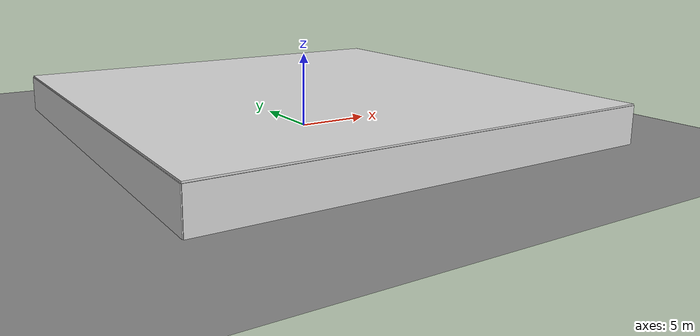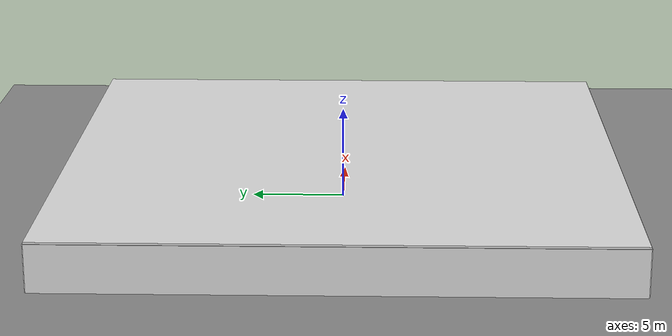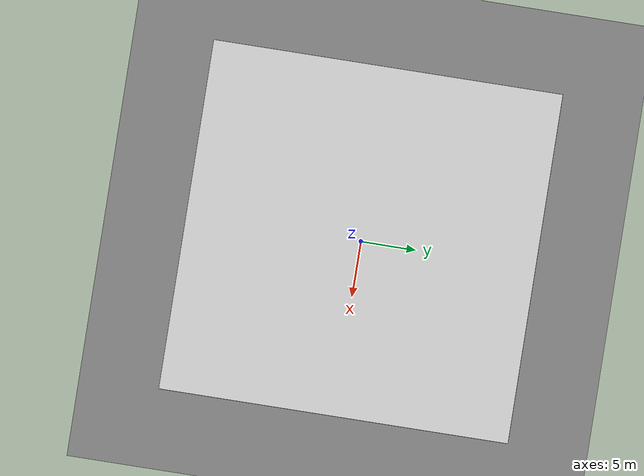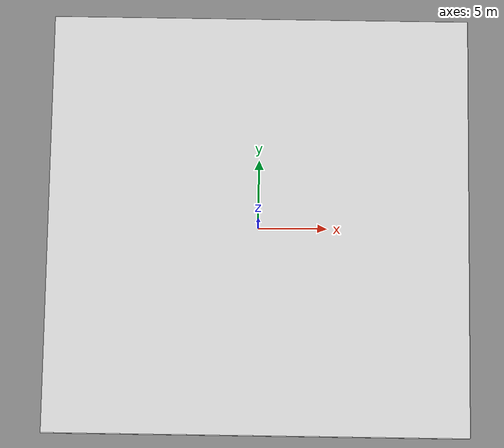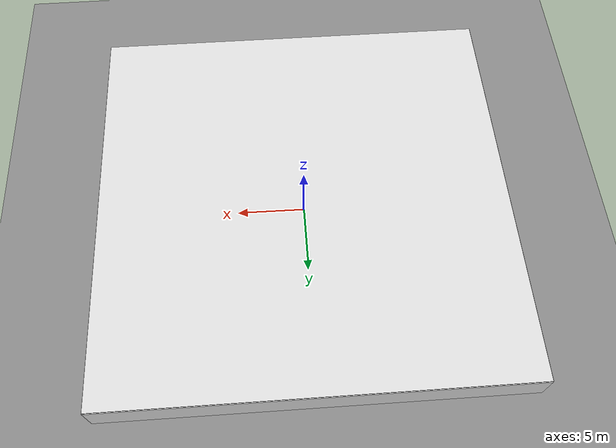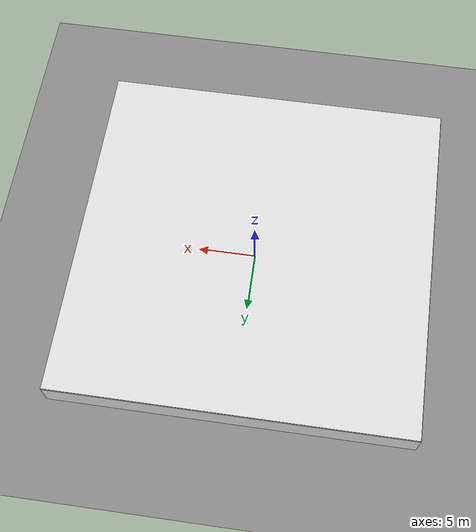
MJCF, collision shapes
<?xml version='1.0' encoding='utf-8'?>
<mujoco model="go2">

  <include file="./scenarios/FT7_B_08/scene_room.xml" />
  <include file="../common/mimic_sites.xml" />

  <statistic center="0 0 0.5" extent="10"/>

  <visual>
    <rgba haze="0 0 0 0" />
    <map znear="0.001" zfar="300" />
  </visual>

  <compiler angle="radian" meshdir="assets" autolimits="true" />

  <option cone="elliptic" impratio="100" />

  <default>
    <default class="go2">
      <geom friction="0.6" margin="0.001" condim="1" />
      <joint axis="0 1 0" damping="2" armature="0.01" frictionloss="0.2" />
      <motor ctrlrange="-23.7 23.7" />
      <default class="abduction">
        <joint axis="1 0 0" range="-1.0472 1.0472" />
      </default>
      <default class="hip">
        <default class="front_hip">
          <joint range="-1.5708 3.4907" />
        </default>
        <default class="back_hip">
          <joint range="-0.5236 4.5379" />
        </default>
      </default>
      <default class="knee">
        <joint range="-2.7227 -0.83776" />
        <motor ctrlrange="-45.43 45.43" />
      </default>
      <default class="visual">
        <geom type="mesh" contype="0" conaffinity="0" group="0" />
      </default>
      <default class="collision">
        <geom group="3" />
        <default class="foot">
          <geom size="0.022" pos="-0.002 0 -0.213" priority="1" solimp="0.015 1 0.022" condim="6" friction="0.8 0.02 0.01" />
        </default>
      </default>
    </default>
  </default>

  <asset>
    <material name="metal" rgba=".9 .95 .95 1" />
    <material name="black" rgba="0 0 0 1" />
    <material name="white" rgba="1 1 1 1" />
    <material name="gray" rgba="0.671705 0.692426 0.774270 1" />
    <material name="mat_red_emissive" rgba="1 0 0 1" emission="1" specular="0" shininess="0" />

    <mesh file="base_0.obj" />
    <mesh file="base_1.obj" />
    <mesh file="base_2.obj" />
    <mesh file="base_3.obj" />
    <mesh file="base_4.obj" />
    <mesh file="hip_0.obj" />
    <mesh file="hip_1.obj" />
    <mesh file="thigh_0.obj" />
    <mesh file="thigh_1.obj" />
    <mesh file="thigh_mirror_0.obj" />
    <mesh file="thigh_mirror_1.obj" />
    <mesh file="calf_0.obj" />
    <mesh file="calf_1.obj" />
    <mesh file="calf_mirror_0.obj" />
    <mesh file="calf_mirror_1.obj" />
    <mesh file="foot.obj" />
  </asset>

  <worldbody>

    <body name="base" pos="0 0 0.445" childclass="go2">
      <camera name="egocentric_cam" pos="0.32 0 0.04" euler="1.5708 -1.5708 0" fovy="90" />
      <light name="spotlight" mode="trackcom" pos="0 -2 50" dir="0 0 -1" />
      <inertial pos="0.021112 0 -0.005366" quat="-0.000543471 0.713435 -0.00173769 0.700719" mass="6.921" diaginertia="0.107027 0.0980771 0.0244531" />
      <freejoint name="root" />
      <geom mesh="base_0" material="black" class="visual" />
      <geom mesh="base_1" material="black" class="visual" />
      <geom mesh="base_2" material="black" class="visual" />
      <geom mesh="base_3" material="white" class="visual" />
      <geom mesh="base_4" material="gray" class="visual" />
      <geom size="0.1881 0.04675 0.057" type="box" class="collision" />
      <geom name="front_cylinder" size="0.05 0.045" pos="0.285 0 0.01" type="cylinder" class="collision" />
      <geom name="front_sphere" size="0.15" pos="0.18 0 -0.12" class="collision"/>
      <site name="imu" pos="-0.02557 0 0.04232" />
      <body name="FL_hip" pos="0.1934 0.0465 0">
        <inertial pos="-0.0054 0.00194 -0.000105" quat="0.497014 0.499245 0.505462 0.498237" mass="0.678" diaginertia="0.00088403 0.000596003 0.000479967" />
        <joint name="FL_hip_joint" class="abduction" />
        <geom mesh="hip_0" material="metal" class="visual" />
        <geom mesh="hip_1" material="gray" class="visual" />
        <geom size="0.046 0.02" pos="0 0.08 0" quat="1 1 0 0" type="cylinder" class="collision" />
        <body name="FL_thigh" pos="0 0.0955 0">
          <inertial pos="-0.00374 -0.0223 -0.0327" quat="0.829533 0.0847635 -0.0200632 0.551623" mass="1.152" diaginertia="0.00594973 0.00584149 0.000878787" />
          <joint name="FL_thigh_joint" class="front_hip" />
          <geom mesh="thigh_0" material="metal" class="visual" />
          <geom mesh="thigh_1" material="gray" class="visual" />
          <geom size="0.1065 0.01225 0.017" pos="0 0 -0.1065" quat="0.707107 0 0.707107 0" type="box" class="collision" />
          <body name="FL_calf" pos="0 0 -0.213">
            <inertial pos="0.00629595 -0.000622121 -0.141417" quat="0.710672 0.00154099 -0.00450087 0.703508" mass="0.241352" diaginertia="0.0014901 0.00146356 5.31397e-05" />
            <joint name="FL_calf_joint" class="knee" />
            <geom mesh="calf_0" material="gray" class="visual" />
            <geom mesh="calf_1" material="black" class="visual" />
            <geom size="0.012 0.06" pos="0.008 0 -0.06" quat="0.994493 0 -0.104807 0" type="cylinder" class="collision" />
            <geom size="0.011 0.0325" pos="0.02 0 -0.148" quat="0.999688 0 0.0249974 0" type="cylinder" class="collision" />
            <geom pos="0 0 -0.213" mesh="foot" class="visual" material="black" />
            <geom name="FL_foot" class="foot" />
          </body>
        </body>
      </body>
      <body name="FR_hip" pos="0.1934 -0.0465 0">
        <inertial pos="-0.0054 -0.00194 -0.000105" quat="0.498237 0.505462 0.499245 0.497014" mass="0.678" diaginertia="0.00088403 0.000596003 0.000479967" />
        <joint name="FR_hip_joint" class="abduction" />
        <geom mesh="hip_0" material="metal" class="visual" quat="4.63268e-05 1 0 0" />
        <geom mesh="hip_1" material="gray" class="visual" quat="4.63268e-05 1 0 0" />
        <geom size="0.046 0.02" pos="0 -0.08 0" quat="0.707107 0.707107 0 0" type="cylinder" class="collision" />
        <body name="FR_thigh" pos="0 -0.0955 0">
          <inertial pos="-0.00374 0.0223 -0.0327" quat="0.551623 -0.0200632 0.0847635 0.829533" mass="1.152" diaginertia="0.00594973 0.00584149 0.000878787" />
          <joint name="FR_thigh_joint" class="front_hip" />
          <geom mesh="thigh_mirror_0" material="metal" class="visual" />
          <geom mesh="thigh_mirror_1" material="gray" class="visual" />
          <geom size="0.1065 0.01225 0.017" pos="0 0 -0.1065" quat="0.707107 0 0.707107 0" type="box" class="collision" />
          <body name="FR_calf" pos="0 0 -0.213">
            <inertial pos="0.00629595 0.000622121 -0.141417" quat="0.703508 -0.00450087 0.00154099 0.710672" mass="0.241352" diaginertia="0.0014901 0.00146356 5.31397e-05" />
            <joint name="FR_calf_joint" class="knee" />
            <geom mesh="calf_mirror_0" material="gray" class="visual" />
            <geom mesh="calf_mirror_1" material="black" class="visual" />
            <geom size="0.013 0.06" pos="0.01 0 -0.06" quat="0.995004 0 -0.0998334 0" type="cylinder" class="collision" />
            <geom size="0.011 0.0325" pos="0.02 0 -0.148" quat="0.999688 0 0.0249974 0" type="cylinder" class="collision" />
            <geom pos="0 0 -0.213" mesh="foot" class="visual" material="black" />
            <geom name="FR_foot" class="foot" />
          </body>
        </body>
      </body>
      <body name="RL_hip" pos="-0.1934 0.0465 0">
        <inertial pos="0.0054 0.00194 -0.000105" quat="0.505462 0.498237 0.497014 0.499245" mass="0.678" diaginertia="0.00088403 0.000596003 0.000479967" />
        <joint name="RL_hip_joint" class="abduction" />
        <geom mesh="hip_0" material="metal" class="visual" quat="4.63268e-05 0 1 0" />
        <geom mesh="hip_1" material="gray" class="visual" quat="4.63268e-05 0 1 0" />
        <geom size="0.046 0.02" pos="0 0.08 0" quat="0.707107 0.707107 0 0" type="cylinder" class="collision" />
        <body name="RL_thigh" pos="0 0.0955 0">
          <inertial pos="-0.00374 -0.0223 -0.0327" quat="0.829533 0.0847635 -0.0200632 0.551623" mass="1.152" diaginertia="0.00594973 0.00584149 0.000878787" />
          <joint name="RL_thigh_joint" class="back_hip" />
          <geom mesh="thigh_0" material="metal" class="visual" />
          <geom mesh="thigh_1" material="gray" class="visual" />
          <geom size="0.1065 0.01225 0.017" pos="0 0 -0.1065" quat="0.707107 0 0.707107 0" type="box" class="collision" />
          <body name="RL_calf" pos="0 0 -0.213">
            <inertial pos="0.00629595 -0.000622121 -0.141417" quat="0.710672 0.00154099 -0.00450087 0.703508" mass="0.241352" diaginertia="0.0014901 0.00146356 5.31397e-05" />
            <joint name="RL_calf_joint" class="knee" />
            <geom mesh="calf_0" material="gray" class="visual" />
            <geom mesh="calf_1" material="black" class="visual" />
            <geom size="0.013 0.06" pos="0.01 0 -0.06" quat="0.995004 0 -0.0998334 0" type="cylinder" class="collision" />
            <geom size="0.011 0.0325" pos="0.02 0 -0.148" quat="0.999688 0 0.0249974 0" type="cylinder" class="collision" />
            <geom pos="0 0 -0.213" mesh="foot" class="visual" material="black" />
            <geom name="RL_foot" class="foot" />
          </body>
        </body>
      </body>
      <body name="RR_hip" pos="-0.1934 -0.0465 0">
        <inertial pos="0.0054 -0.00194 -0.000105" quat="0.499245 0.497014 0.498237 0.505462" mass="0.678" diaginertia="0.00088403 0.000596003 0.000479967" />
        <joint name="RR_hip_joint" class="abduction" />
        <geom mesh="hip_0" material="metal" class="visual" quat="2.14617e-09 4.63268e-05 4.63268e-05 -1" />
        <geom mesh="hip_1" material="gray" class="visual" quat="2.14617e-09 4.63268e-05 4.63268e-05 -1" />
        <geom size="0.046 0.02" pos="0 -0.08 0" quat="0.707107 0.707107 0 0" type="cylinder" class="collision" />
        <body name="RR_thigh" pos="0 -0.0955 0">
          <inertial pos="-0.00374 0.0223 -0.0327" quat="0.551623 -0.0200632 0.0847635 0.829533" mass="1.152" diaginertia="0.00594973 0.00584149 0.000878787" />
          <joint name="RR_thigh_joint" class="back_hip" />
          <geom mesh="thigh_mirror_0" material="metal" class="visual" />
          <geom mesh="thigh_mirror_1" material="gray" class="visual" />
          <geom size="0.1065 0.01225 0.017" pos="0 0 -0.1065" quat="0.707107 0 0.707107 0" type="box" class="collision" />
          <body name="RR_calf" pos="0 0 -0.213">
            <inertial pos="0.00629595 0.000622121 -0.141417" quat="0.703508 -0.00450087 0.00154099 0.710672" mass="0.241352" diaginertia="0.0014901 0.00146356 5.31397e-05" />
            <joint name="RR_calf_joint" class="knee" />
            <geom mesh="calf_mirror_0" material="gray" class="visual" />
            <geom mesh="calf_mirror_1" material="black" class="visual" />
            <geom size="0.013 0.06" pos="0.01 0 -0.06" quat="0.995004 0 -0.0998334 0" type="cylinder" class="collision" />
            <geom size="0.011 0.0325" pos="0.02 0 -0.148" quat="0.999688 0 0.0249974 0" type="cylinder" class="collision" />
            <geom pos="0 0 -0.213" mesh="foot" class="visual" material="black" />
            <geom name="RR_foot" class="foot" />
          </body>
        </body>
      </body>
    </body>
  </worldbody>

  <actuator>
    <motor class="abduction" name="FR_hip" joint="FR_hip_joint" />
    <motor class="hip" name="FR_thigh" joint="FR_thigh_joint" />
    <motor class="knee" name="FR_calf" joint="FR_calf_joint" />
    <motor class="abduction" name="FL_hip" joint="FL_hip_joint" />
    <motor class="hip" name="FL_thigh" joint="FL_thigh_joint" />
    <motor class="knee" name="FL_calf" joint="FL_calf_joint" />
    <motor class="abduction" name="RR_hip" joint="RR_hip_joint" />
    <motor class="hip" name="RR_thigh" joint="RR_thigh_joint" />
    <motor class="knee" name="RR_calf" joint="RR_calf_joint" />
    <motor class="abduction" name="RL_hip" joint="RL_hip_joint" />
    <motor class="hip" name="RL_thigh" joint="RL_thigh_joint" />
    <motor class="knee" name="RL_calf" joint="RL_calf_joint" />
  </actuator>

  <keyframe>
    <key name="home" qpos="0 0 0.27 1 0 0 0 0 0.9 -1.8 0 0.9 -1.8 0 0.9 -1.8 0 0.9 -1.8" ctrl="0 0.9 -1.8 0 0.9 -1.8 0 0.9 -1.8 0 0.9 -1.8" />
  </keyframe>
</mujoco>

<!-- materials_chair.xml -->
<mujoco>
  <texture name="tex_wood_chair" type="2d" file="oak_veneer_01_diff_2k.png"/>
  <material name="mat_wood_chair"
            texture="tex_wood_chair"
            texrepeat="1.2 1.2"
            texuniform="true"
            rgba="1 1 1 1"
            specular="0.22"
            shininess="0.35"
            reflectance="0.04"/>
</mujoco>

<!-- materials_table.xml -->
<mujoco>
  <texture name="tex_wood_table" type="2d" file="wood_table_001_diff_2k.png"/>
  <material name="mat_wood_table"
            texture="tex_wood_table"
            texrepeat="1.2 1.2"
            texuniform="true"
            rgba="1 1 1 1"
            specular="0.22"
            shininess="0.35"
            reflectance="0.04"/>
</mujoco>

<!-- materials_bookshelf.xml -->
<mujoco>
  <texture name="tex_bookshelf_wood"
           type="2d"
           file="oak_veneer_01_diff_2k.png"/>

  <material name="mat_wood_bookshelf"
            texture="tex_bookshelf_wood"
            texrepeat="1.2 1.2"
            texuniform="true"
            rgba="1 1 1 1"
            specular="0.22"
            shininess="0.35"
            reflectance="0.04"/>
</mujoco>

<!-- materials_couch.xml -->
<mujoco>
  <texture name="tex_wood_couch" type="2d" file="wood_table_001_diff_2k.png"/>
  <material name="mat_wood_couch"
            texture="tex_wood_couch"
            texrepeat="1.2 1.2"
            texuniform="true"
            rgba="1 1 1 1"
            specular="0.22"
            shininess="0.35"
            reflectance="0.04"/>

  <texture name="tex_fabric" type="2d" file="rough_linen_diff_2k.png"/>
  <material name="mat_fabric"
            texture="tex_fabric"
            texrepeat="1.2 1.2"
            texuniform="true"
            rgba="1 1 1 1"
            specular="0.10"
            shininess="0.08"
            reflectance="0.01"/>
</mujoco>

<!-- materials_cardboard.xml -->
<mujoco>
  <texture name="tex_cardboard" type="2d" file="cardboard.png"/>
  <material name="mat_cardboard"
            texture="tex_cardboard"
            texrepeat="1.2 1.2"
            texuniform="true"
            rgba="1 1 1 1"
            specular="0.10"
            shininess="0.08"
            reflectance="0.01"/>
</mujoco>

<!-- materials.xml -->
<mujoco>
  <material name="mat_wall" rgba="0.85 0.85 0.85 1"/>
  <include file="materials_chair.xml"/>

  <include file="materials_table.xml"/>

  <include file="materials_bookshelf.xml"/>
  <material name="mat_book_red" rgba="0.70 0.18 0.16 1"/>
  <material name="mat_book_blue" rgba="0.16 0.31 0.62 1"/>
  <material name="mat_book_green" rgba="0.22 0.45 0.24 1"/>
  <material name="mat_book_yellow" rgba="0.78 0.66 0.22 1"/>
  <material name="mat_book_dark" rgba="0.20 0.18 0.17 1"/>

  <include file="materials_couch.xml"/>
  <include file="materials_cardboard.xml"/>

  <texture name="tex_metal" type="2d" file="metal.png"/>
  <material name="mat_metal" texture="tex_metal" texrepeat="2 2" reflectance="0.3"/>
  <material name="mat_trash_can_dark_green"
            texture="tex_metal"
            texrepeat="2 2"
            rgba="0.10 0.18 0.12 1"
            specular="0.18"
            shininess="0.20"
            reflectance="0.02"/>

  <texture name="tex_floor" type="2d" builtin="checker" width="512" height="512"
           rgb1="0.55 0.55 0.55" rgb2="0.50 0.50 0.50"/>
  <material name="mat_floor" texture="tex_floor" texrepeat="4 4" reflectance="0.00"/>

</mujoco>

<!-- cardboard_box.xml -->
<mujoco>
  <body>
    <geom name="cardboard_box_base" type="box" pos="0 0 0.015" size="0.20 0.20 0.015" material="mat_cardboard"/>
    <geom name="cardboard_box_wall_front" type="box" pos="0  0.185 0.155" size="0.20 0.015 0.125" material="mat_cardboard"/>
    <geom name="cardboard_box_wall_back" type="box" pos="0 -0.185 0.155" size="0.20 0.015 0.125" material="mat_cardboard"/>
    <geom name="cardboard_box_wall_left" type="box" pos="-0.185 0 0.155" size="0.015 0.20 0.125" material="mat_cardboard"/>
    <geom name="cardboard_box_wall_right" type="box" pos=" 0.185 0 0.155" size="0.015 0.20 0.125" material="mat_cardboard"/>
  </body>
</mujoco>

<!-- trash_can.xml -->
<mujoco>
  <body>
    <!-- bottom foot ring -->
    <geom name="trash_can_base_ring" type="cylinder"
          pos="0 0 0.020" size="0.115 0.020"
          material="mat_trash_can_dark_green"/>

    <!-- main body -->
    <geom name="trash_can_body" type="cylinder"
          pos="0 0 0.155" size="0.138 0.135"
          material="mat_trash_can_dark_green"/>

    <!-- upper collar -->
    <geom name="trash_can_upper_band" type="cylinder"
          pos="0 0 0.265" size="0.152 0.016"
          material="mat_trash_can_dark_green"/>

    <!-- rolled top rim -->
    <geom name="trash_can_rim" type="cylinder"
          pos="0 0 0.292" size="0.168 0.010"
          material="mat_trash_can_dark_green"/>

    <!-- inset inner lip for a more finished opening -->
    <geom name="trash_can_inner_lip" type="cylinder"
          pos="0 0 0.276" size="0.126 0.008"
          material="mat_trash_can_dark_green"/>
  </body>
</mujoco>

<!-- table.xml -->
<mujoco>
  <body>
    <!-- tabletop -->
    <geom name="table_top" type="box"
          pos="0 0 0.595" size="0.62 0.42 0.035"
          material="mat_wood_table"/>
    <geom name="table_helper_front" type="box"
          pos="0 0.295 0.275" size="0.450 0.012 0.275"
          rgba="0 0 0 0"/>
    <geom name="table_helper_back" type="box"
          pos="0 -0.295 0.275" size="0.450 0.012 0.275"
          rgba="0 0 0 0"/>
    <geom name="table_helper_left" type="box"
          pos="-0.515 0 0.275" size="0.012 0.245 0.275"
          rgba="0 0 0 0"/>
    <geom name="table_helper_right" type="box"
          pos="0.515 0 0.275" size="0.012 0.245 0.275"
          rgba="0 0 0 0"/>
    <geom name="table_top_bevel_front" type="box"
          pos="0 0.395 0.555" size="0.58 0.012 0.012"
          material="mat_wood_table"/>
    <geom name="table_top_bevel_back" type="box"
          pos="0 -0.395 0.555" size="0.58 0.012 0.012"
          material="mat_wood_table"/>
    <geom name="table_top_bevel_left" type="box"
          pos="-0.595 0 0.555" size="0.012 0.36 0.012"
          material="mat_wood_table"/>
    <geom name="table_top_bevel_right" type="box"
          pos="0.595 0 0.555" size="0.012 0.36 0.012"
          material="mat_wood_table"/>

    <!-- apron -->
    <geom name="table_apron_front" type="box"
          pos="0 0.335 0.515" size="0.53 0.025 0.045"
          material="mat_wood_table"/>
    <geom name="table_apron_back" type="box"
          pos="0 -0.335 0.515" size="0.53 0.025 0.045"
          material="mat_wood_table"/>
    <geom name="table_apron_left" type="box"
          pos="-0.535 0 0.515" size="0.025 0.29 0.045"
          material="mat_wood_table"/>
    <geom name="table_apron_right" type="box"
          pos="0.535 0 0.515" size="0.025 0.29 0.045"
          material="mat_wood_table"/>

    <!-- legs -->
    <geom name="table_leg_fl" type="box"
          pos="0.515 0.295 0.255" size="0.032 0.032 0.255"
          material="mat_wood_table"/>
    <geom name="table_leg_fr" type="box"
          pos="0.515 -0.295 0.255" size="0.032 0.032 0.255"
          material="mat_wood_table"/>
    <geom name="table_leg_rl" type="box"
          pos="-0.515 0.295 0.255" size="0.032 0.032 0.255"
          material="mat_wood_table"/>
    <geom name="table_leg_rr" type="box"
          pos="-0.515 -0.295 0.255" size="0.032 0.032 0.255"
          material="mat_wood_table"/>

    <!-- lower stretchers -->
    <geom name="table_stretcher_left" type="box"
          pos="-0.515 0 0.105" size="0.015 0.295 0.015"
          material="mat_wood_table"/>
    <geom name="table_stretcher_right" type="box"
          pos="0.515 0 0.105" size="0.015 0.295 0.015"
          material="mat_wood_table"/>
    <geom name="table_stretcher_front" type="box"
          pos="0 0.295 0.120" size="0.515 0.015 0.015"
          material="mat_wood_table"/>
    <geom name="table_stretcher_back" type="box"
          pos="0 -0.295 0.120" size="0.515 0.015 0.015"
          material="mat_wood_table"/>

  </body>
</mujoco>

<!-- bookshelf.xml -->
<mujoco>
  <body name="bookshelf" pos="0 0 0">
      <!-- Outer carcass -->
      <geom name="bookshelf_left_panel" type="box"
            pos="-0.285 0 0.54" size="0.025 0.12 0.54"
            material="mat_wood_bookshelf"/>

      <geom name="bookshelf_right_panel" type="box"
            pos="0.285 0 0.54" size="0.025 0.12 0.54"
            material="mat_wood_bookshelf"/>

      <geom name="bookshelf_bottom_panel" type="box"
            pos="0 0 0.035" size="0.285 0.12 0.035"
            material="mat_wood_bookshelf"/>

      <geom name="bookshelf_top_panel" type="box"
            pos="0 0 1.045" size="0.285 0.12 0.035"
            material="mat_wood_bookshelf"/>

      <!-- invisible collision panels to keep objects inside the shelf -->
      <geom name="bookshelf_front_collision" type="box"
            pos="0 -0.130 0.54" size="0.270 0.012 0.50"
            rgba="0 0 0 0"/>
      <geom name="bookshelf_back_collision" type="box"
            pos="0 0.130 0.54" size="0.270 0.012 0.50"
            rgba="0 0 0 0"/>

      <!-- interior shelves -->
      <geom name="bookshelf_shelf_1" type="box"
            pos="0 0.01 0.29" size="0.255 0.10 0.030"
            material="mat_wood_bookshelf"/>
      <geom name="book_s1_a" type="box"
            pos="-0.18 0.00 0.355" size="0.022 0.070 0.065"
            material="mat_book_red"/>
      <geom name="book_s1_b" type="box"
            pos="-0.12 0.00 0.345" size="0.018 0.070 0.055"
            material="mat_book_blue"/>
      <geom name="book_s1_c" type="box"
            pos="-0.07 0.00 0.360" size="0.020 0.070 0.070"
            material="mat_book_green"/>
      <geom name="book_s1_d" type="box"
            pos="0.02 0.00 0.350" size="0.024 0.070 0.060"
            material="mat_book_yellow"/>
      <geom name="book_s1_e" type="box"
            pos="0.08 0.00 0.340" size="0.018 0.070 0.050"
            material="mat_book_dark"/>
      <geom name="book_s1_f" type="box"
            pos="0.18 0.00 0.355" size="0.026 0.070 0.065"
            material="mat_book_blue"/>

      <geom name="bookshelf_shelf_2" type="box"
            pos="0 0.01 0.56" size="0.255 0.10 0.030"
            material="mat_wood_bookshelf"/>
      <geom name="book_s2_a" type="box"
            pos="-0.20 0.00 0.620" size="0.020 0.070 0.050"
            material="mat_book_green"/>
      <geom name="book_s2_b" type="box"
            pos="-0.15 0.00 0.635" size="0.016 0.070 0.065"
            material="mat_book_red"/>
      <geom name="book_s2_c" type="box"
            pos="-0.10 0.00 0.628" size="0.021 0.070 0.058"
            material="mat_book_dark"/>
      <geom name="book_s2_d" type="box"
            pos="0.04 0.00 0.640" size="0.028 0.070 0.070"
            material="mat_book_blue"/>
      <geom name="book_s2_e" type="box"
            pos="0.11 0.00 0.622" size="0.018 0.070 0.052"
            material="mat_book_yellow"/>
      <geom name="book_s2_f" type="box"
            pos="0.17 0.00 0.632" size="0.022 0.070 0.062"
            material="mat_book_red"/>

      <geom name="bookshelf_shelf_3" type="box"
            pos="0 0.01 0.83" size="0.255 0.10 0.030"
            material="mat_wood_bookshelf"/>
      <geom name="book_s3_a" type="box"
            pos="-0.19 0.00 0.895" size="0.018 0.070 0.065"
            material="mat_book_yellow"/>
      <geom name="book_s3_b" type="box"
            pos="-0.14 0.00 0.885" size="0.022 0.070 0.055"
            material="mat_book_blue"/>
      <geom name="book_s3_c" type="box"
            pos="-0.08 0.00 0.900" size="0.020 0.070 0.070"
            material="mat_book_green"/>
      <geom name="book_s3_d" type="box"
            pos="0.00 0.00 0.890" size="0.026 0.070 0.060"
            material="mat_book_red"/>
      <geom name="book_s3_e" type="box"
            pos="0.10 0.00 0.882" size="0.018 0.070 0.052"
            material="mat_book_dark"/>
      <geom name="book_s3_f" type="box"
            pos="0.17 0.00 0.892" size="0.024 0.070 0.062"
            material="mat_book_green"/>

      <!-- front face frame -->
      <geom name="bookshelf_front_left_stile" type="box"
            pos="-0.268 -0.108 0.54" size="0.012 0.010 0.54"
            material="mat_wood_bookshelf"/>

      <geom name="bookshelf_front_right_stile" type="box"
            pos="0.268 -0.108 0.54" size="0.012 0.010 0.54"
            material="mat_wood_bookshelf"/>

      <geom name="bookshelf_front_top_rail" type="box"
            pos="0 -0.108 1.03" size="0.255 0.010 0.012"
            material="mat_wood_bookshelf"/>

      <geom name="bookshelf_front_mid_rail_1" type="box"
            pos="0 -0.108 0.81" size="0.255 0.010 0.010"
            material="mat_wood_bookshelf"/>

      <geom name="bookshelf_front_mid_rail_2" type="box"
            pos="0 -0.108 0.54" size="0.255 0.010 0.010"
            material="mat_wood_bookshelf"/>

      <geom name="bookshelf_front_bottom_rail" type="box"
            pos="0 -0.108 0.05" size="0.255 0.010 0.014"
            material="mat_wood_bookshelf"/>

      <!-- feet -->
      <geom name="bookshelf_left_foot" type="box"
            pos="-0.22 -0.06 0.008" size="0.04 0.04 0.008"
            material="mat_wood_bookshelf"/>

      <geom name="bookshelf_right_foot" type="box"
            pos="0.22 -0.06 0.008" size="0.04 0.04 0.008"
            material="mat_wood_bookshelf"/>
  </body>
</mujoco>

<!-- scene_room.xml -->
<mujoco model="scene">

  <visual>
    <headlight diffuse="0.6 0.6 0.6" ambient="0.3 0.3 0.3" specular="0 0 0"/>
    <rgba haze="0.871 0.616 0.4 0.5"/>
    <global azimuth="-130" elevation="-20"/>
  </visual>

  <asset>
    <texture builtin="gradient" height="100" rgb1="0.9 0.9 0.9" rgb2="0.55 0.25 0.0" type="skybox" width="100"/>
    <include file="../../room/objects/materials.xml"/>
  </asset>

    <worldbody>
        <geom name="floor" friction="1 .1 .1" pos="0 0 0" size="0 0 0.125" type="plane" material="mat_floor" condim="3" conaffinity="1" contype="1" group="2"/>
        <light cutoff="1000" diffuse="1.5 1.5 1.5" dir="-0 0 -1.3" directional="true" exponent="10" pos="0 0 10.3" specular=".1 .1 .1" castshadow="false"/>

        <geom name="wall_negx" type="box" pos="-15.0 0.0 1.25" size="0.05 15.0 1.25" material="mat_wall"/>
        <geom name="wall_posx" type="box" pos=" 15.0 0.0 1.25" size="0.05 15.0 1.25" material="mat_wall"/>
        <geom name="wall_negy" type="box" pos="0.0 -15.0 1.25" size="15.0 0.05 1.25" material="mat_wall"/>
        <geom name="wall_posy" type="box" pos="0.0  15.0 1.25" size="15.0 0.05 1.25" material="mat_wall"/>

        <geom name="ceiling" type="box"
          pos="0 0 2.55"
          size="15.0 15.0 0.05"
          material="mat_wall"
          contype="1" conaffinity="1"
        />

        <!-- SCENARIO: FT7_B_08 | BX+TC near + T mid + B far, offset left -->

        <!-- TARGET: cardboard_box -->
        <body name="cardboard_box_target" pos="1.5000 1.0000 0.0" euler="0 0 0.0000">
          <include file="../../room/objects/cardboard_box.xml"/>
        </body>

        <!-- TARGET: trash_can -->
        <body name="trash_can_target" pos="2.5000 2.0000 0.0" euler="0 0 0.0000">
          <include file="../../room/objects/trash_can.xml"/>
        </body>

        <!-- TARGET: table -->
        <body name="table_target" pos="4.0000 1.0000 0.0" euler="0 0 1.5708">
          <include file="../../room/objects/table.xml"/>
        </body>

        <!-- TARGET: bookshelf -->
        <body name="bookshelf_target" pos="6.5000 1.5000 0.0" euler="0 0 1.5708">
          <include file="../../room/objects/bookshelf.xml"/>
        </body>

        <!-- DISTRACTORS: none -->

    </worldbody>
</mujoco>

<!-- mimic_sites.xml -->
<mujoco model="mimic_sites">
    <default>
    <default class="mimic">
        <site group="1" type="box" size="0.075 0.05 0.025" rgba="1.0 0.0 0.0 0.5"/>
    </default>
    </default>
</mujoco>
